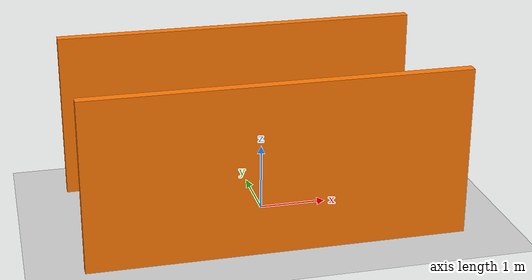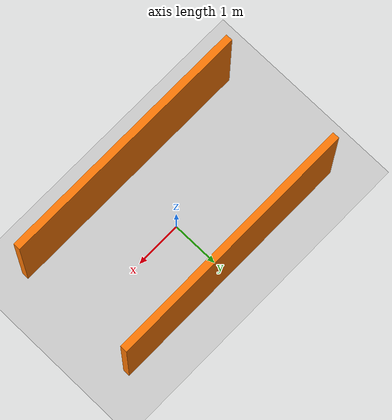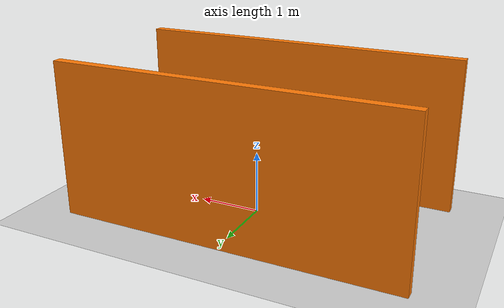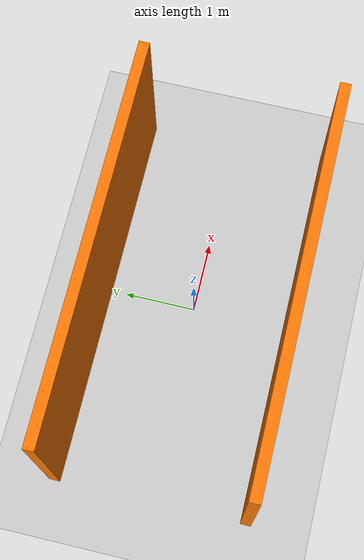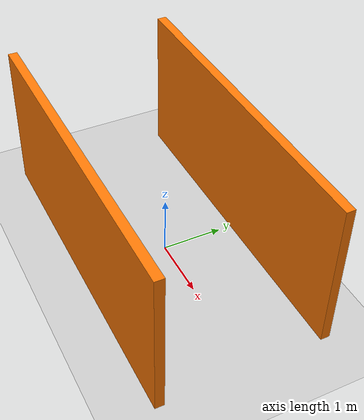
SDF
<sdf version="1.7">
 <world name="default">
  <light name="sun" type="directional">
   <pose>0 0 10 0 -0 0</pose>
   <diffuse>0.8 0.8 0.8 1</diffuse>
   <specular>0.2 0.2 0.2 1</specular>
   <attenuation>
    <range>1000</range>
    <constant>0.9</constant>
    <linear>0.01</linear>
    <quadratic>0.001</quadratic>
   </attenuation>
   <direction>-0.5 0.1 -0.9</direction>
   <spot><inner_angle>0</inner_angle><outer_angle>0</outer_angle><falloff>0</falloff></spot>
  </light>
  <model name="ground_plane">
   <static>1</static>
   <link name="link">
    <collision name="collision">
     <geometry><plane><normal>0 0 1</normal><size>100 100</size></plane></geometry>
     <surface>
      <contact><collide_bitmask>65535</collide_bitmask></contact>
      <friction><ode><mu>100</mu><mu2>50</mu2></ode></friction>
     </surface>
    </collision>
    <visual name="visual">
     <cast_shadows>0</cast_shadows>
     <geometry><plane><normal>0 0 1</normal><size>100 100</size></plane></geometry>
     <material>
      <script><uri>file://media/materials/scripts/gazebo.material</uri><name>Gazebo/Grey</name></script>
     </material>
    </visual>
   </link>
  </model>
  <gravity>0 0 -9.8</gravity>
  <magnetic_field>6e-06 2.3e-05 -4.2e-05</magnetic_field>
  <atmosphere type="adiabatic"/>
  <physics type="ode">
   <max_step_size>0.001</max_step_size>
   <real_time_factor>1</real_time_factor>
   <real_time_update_rate>1000</real_time_update_rate>
  </physics>
  <scene><ambient>0.4 0.4 0.4 1</ambient><background>0.7 0.7 0.7 1</background><shadows>1</shadows></scene>
  <spherical_coordinates>
   <surface_model>EARTH_WGS84</surface_model>
   <latitude_deg>0</latitude_deg>
   <longitude_deg>0</longitude_deg>
   <elevation>0</elevation>
   <heading_deg>0</heading_deg>
  </spherical_coordinates>
  <model name="korytarzyk">
   <pose>-0.066018 -0.045509 0 0 -0 0</pose>
   <link name="Wall_52">
    <collision name="Wall_52_Collision">
     <geometry><box><size>5.5 0.15 2.5</size></box></geometry>
     <pose>0 0 1.25 0 -0 0</pose>
    </collision>
    <visual name="Wall_52_Visual">
     <pose>0 0 1.25 0 -0 0</pose>
     <geometry><box><size>5.5 0.15 2.5</size></box></geometry>
     <material>
      <script><uri>file://media/materials/scripts/gazebo.material</uri><name>Gazebo/Grey</name></script>
      <ambient>0.996078 0.47451 0.0196078 1</ambient>
     </material>
     <meta><layer>0</layer></meta>
    </visual>
    <pose>0.005292 -1.33992 0 0 -0 0</pose>
   </link>
   <link name="Wall_54">
    <collision name="Wall_54_Collision">
     <geometry><box><size>5.5 0.15 2.5</size></box></geometry>
     <pose>0 0 1.25 0 -0 0</pose>
    </collision>
    <visual name="Wall_54_Visual">
     <pose>0 0 1.25 0 -0 0</pose>
     <geometry><box><size>5.5 0.15 2.5</size></box></geometry>
     <material>
      <script><uri>file://media/materials/scripts/gazebo.material</uri><name>Gazebo/Grey</name></script>
      <ambient>0.996078 0.47451 0.0196078 1</ambient>
     </material>
     <meta><layer>0</layer></meta>
    </visual>
    <pose>-0.005292 1.33992 0 0 -0 3.14159</pose>
   </link>
   <static>1</static>
  </model>
 </world>
</sdf>
